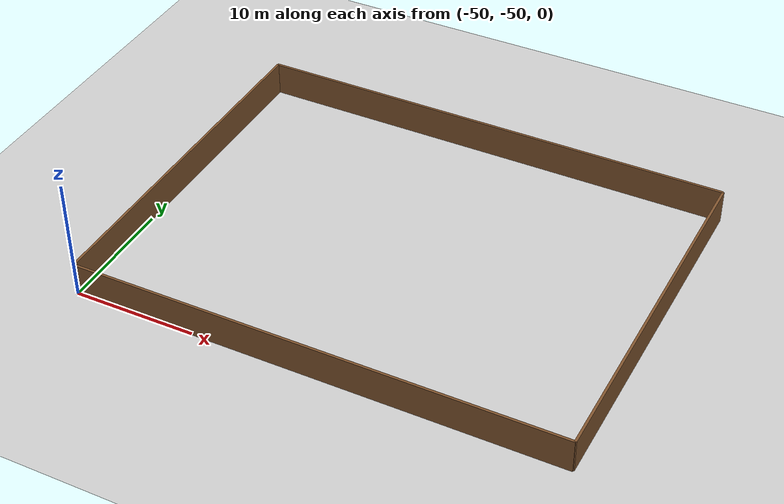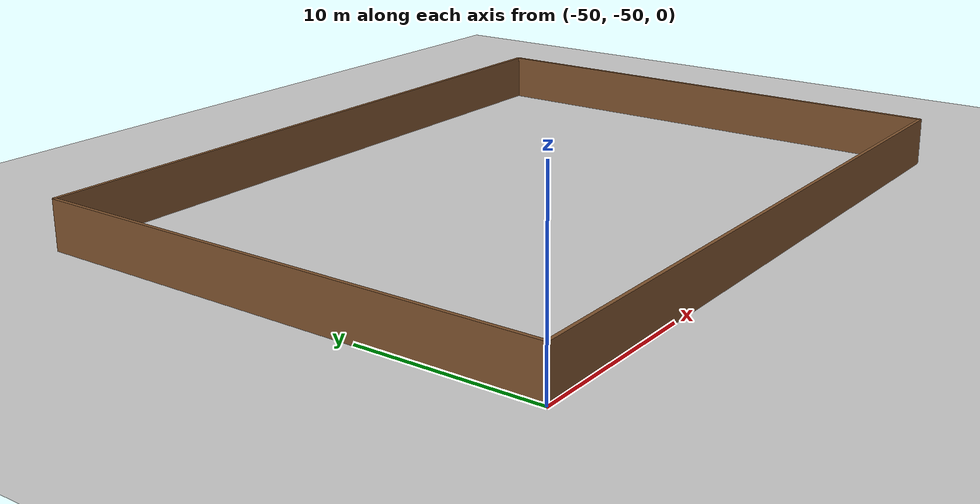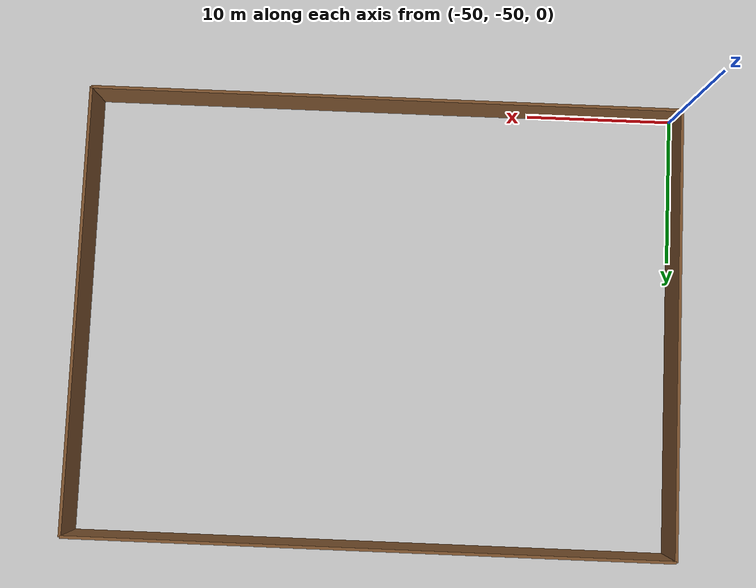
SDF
<sdf version="1.6">
 <world name="default">
  <model name="ground_plane">
   <static>1</static>
   <link name="link">
    <collision name="collision">
     <geometry><plane><normal>0 0 1</normal><size>100 100</size></plane></geometry>
     <surface>
      <contact><collide_bitmask>65535</collide_bitmask></contact>
      <friction><ode><mu>100</mu><mu2>50</mu2></ode></friction>
     </surface>
    </collision>
    <visual name="visual">
     <cast_shadows>0</cast_shadows>
     <geometry><plane><normal>0 0 1</normal><size>100 100</size></plane></geometry>
     <material>
      <script><uri>file://media/materials/scripts/gazebo.material</uri><name>Gazebo/Grey</name></script>
     </material>
    </visual>
   </link>
  </model>
  <model name="brownbrick_wall">
   <static>1</static>
   <link name="link_1">
    <pose>20 0 1.4 0 -0 0</pose>
    <inertial>
     <inertia><ixx>nan</ixx><ixy>0</ixy><ixz>0</ixz><iyy>nan</iyy><iyz>0</iyz><izz>nan</izz></inertia>
     <mass>0</mass>
    </inertial>
    <visual name="visual_1">
     <cast_shadows>0</cast_shadows>
     <geometry><box><size>40 0.2 2.8</size></box></geometry>
     <material>
      <script>
       <uri>model://env_wall/brownbrick_wall/materials/scripts</uri>
       <uri>model://env_wall/brownbrick_wall/materials/textures</uri>
       <name>vrc/brownbrick_wall</name>
      </script>
      <ambient>1 0.764706 0.305882 1</ambient>
      <shader type="pixel"/>
      <diffuse>0.7 0.7 0.7 1</diffuse>
      <specular>0.01 0.01 0.01 1</specular>
      <emissive>0 0 0 1</emissive>
     </material>
    </visual>
    <collision name="collision_1">
     <geometry><box><size>40 0.2 2.8</size></box></geometry>
     <surface>
      <friction>
       <ode><mu>1</mu><mu2>1</mu2><fdir1>0 0 0</fdir1><slip1>0</slip1><slip2>0</slip2></ode>
       <torsional>
        <coefficient>1</coefficient>
        <patch_radius>0</patch_radius>
        <surface_radius>0</surface_radius>
        <use_patch_radius>1</use_patch_radius>
        <ode><slip>0</slip></ode>
       </torsional>
      </friction>
      <bounce><restitution_coefficient>0</restitution_coefficient><threshold>1e+06</threshold></bounce>
      <contact>
       <collide_without_contact>0</collide_without_contact>
       <collide_without_contact_bitmask>1</collide_without_contact_bitmask>
       <collide_bitmask>1</collide_bitmask>
       <ode>
        <soft_cfm>0</soft_cfm>
        <soft_erp>0.2</soft_erp>
        <kp>1e+13</kp>
        <kd>1</kd>
        <max_vel>0.01</max_vel>
        <min_depth>0</min_depth>
       </ode>
       <bullet>
        <split_impulse>1</split_impulse>
        <split_impulse_penetration_threshold>-0.01</split_impulse_penetration_threshold>
        <soft_cfm>0</soft_cfm>
        <soft_erp>0.2</soft_erp>
        <kp>1e+13</kp>
        <kd>1</kd>
       </bullet>
      </contact>
     </surface>
    </collision>
   </link>
   <link name="link_2">
    <pose>20 30 1.4 0 -0 0</pose>
    <inertial>
     <inertia><ixx>nan</ixx><ixy>0</ixy><ixz>0</ixz><iyy>nan</iyy><iyz>0</iyz><izz>nan</izz></inertia>
     <mass>0</mass>
    </inertial>
    <visual name="visual_2">
     <cast_shadows>0</cast_shadows>
     <geometry><box><size>40 0.2 2.8</size></box></geometry>
     <material>
      <script>
       <uri>model://env_wall/brownbrick_wall/materials/scripts</uri>
       <uri>model://env_wall/brownbrick_wall/materials/textures</uri>
       <name>vrc/brownbrick_wall</name>
      </script>
      <ambient>1 0.764706 0.305882 1</ambient>
      <shader type="pixel"/>
      <diffuse>0.7 0.7 0.7 1</diffuse>
      <specular>0.01 0.01 0.01 1</specular>
      <emissive>0 0 0 1</emissive>
     </material>
    </visual>
    <collision name="collision_2">
     <geometry><box><size>40 0.2 2.8</size></box></geometry>
     <surface>
      <friction>
       <ode><mu>1</mu><mu2>1</mu2><fdir1>0 0 0</fdir1><slip1>0</slip1><slip2>0</slip2></ode>
       <torsional>
        <coefficient>1</coefficient>
        <patch_radius>0</patch_radius>
        <surface_radius>0</surface_radius>
        <use_patch_radius>1</use_patch_radius>
        <ode><slip>0</slip></ode>
       </torsional>
      </friction>
      <bounce><restitution_coefficient>0</restitution_coefficient><threshold>1e+06</threshold></bounce>
      <contact>
       <collide_without_contact>0</collide_without_contact>
       <collide_without_contact_bitmask>1</collide_without_contact_bitmask>
       <collide_bitmask>1</collide_bitmask>
       <ode>
        <soft_cfm>0</soft_cfm>
        <soft_erp>0.2</soft_erp>
        <kp>1e+13</kp>
        <kd>1</kd>
        <max_vel>0.01</max_vel>
        <min_depth>0</min_depth>
       </ode>
       <bullet>
        <split_impulse>1</split_impulse>
        <split_impulse_penetration_threshold>-0.01</split_impulse_penetration_threshold>
        <soft_cfm>0</soft_cfm>
        <soft_erp>0.2</soft_erp>
        <kp>1e+13</kp>
        <kd>1</kd>
       </bullet>
      </contact>
     </surface>
    </collision>
   </link>
   <link name="link_3">
    <pose>0 15 1.4 0 -0 1.57</pose>
    <inertial>
     <inertia><ixx>nan</ixx><ixy>0</ixy><ixz>0</ixz><iyy>nan</iyy><iyz>0</iyz><izz>nan</izz></inertia>
     <mass>0</mass>
    </inertial>
    <visual name="visual_3">
     <cast_shadows>0</cast_shadows>
     <geometry><box><size>30 0.2 2.8</size></box></geometry>
     <material>
      <script>
       <uri>model://env_wall/brownbrick_wall/materials/scripts</uri>
       <uri>model://env_wall/brownbrick_wall/materials/textures</uri>
       <name>vrc/brownbrick_wall</name>
      </script>
      <ambient>1 0.764706 0.305882 1</ambient>
      <shader type="pixel"/>
      <diffuse>0.7 0.7 0.7 1</diffuse>
      <specular>0.01 0.01 0.01 1</specular>
      <emissive>0 0 0 1</emissive>
     </material>
    </visual>
    <collision name="collision_3">
     <geometry><box><size>30 0.2 2.8</size></box></geometry>
     <surface>
      <friction>
       <ode><mu>1</mu><mu2>1</mu2><fdir1>0 0 0</fdir1><slip1>0</slip1><slip2>0</slip2></ode>
       <torsional>
        <coefficient>1</coefficient>
        <patch_radius>0</patch_radius>
        <surface_radius>0</surface_radius>
        <use_patch_radius>1</use_patch_radius>
        <ode><slip>0</slip></ode>
       </torsional>
      </friction>
      <bounce><restitution_coefficient>0</restitution_coefficient><threshold>1e+06</threshold></bounce>
      <contact>
       <collide_without_contact>0</collide_without_contact>
       <collide_without_contact_bitmask>1</collide_without_contact_bitmask>
       <collide_bitmask>1</collide_bitmask>
       <ode>
        <soft_cfm>0</soft_cfm>
        <soft_erp>0.2</soft_erp>
        <kp>1e+13</kp>
        <kd>1</kd>
        <max_vel>0.01</max_vel>
        <min_depth>0</min_depth>
       </ode>
       <bullet>
        <split_impulse>1</split_impulse>
        <split_impulse_penetration_threshold>-0.01</split_impulse_penetration_threshold>
        <soft_cfm>0</soft_cfm>
        <soft_erp>0.2</soft_erp>
        <kp>1e+13</kp>
        <kd>1</kd>
       </bullet>
      </contact>
     </surface>
    </collision>
   </link>
   <link name="link_4">
    <pose>40 15 1.4 0 -0 1.57</pose>
    <inertial>
     <inertia><ixx>nan</ixx><ixy>0</ixy><ixz>0</ixz><iyy>nan</iyy><iyz>0</iyz><izz>nan</izz></inertia>
     <mass>0</mass>
    </inertial>
    <visual name="visual_4">
     <cast_shadows>0</cast_shadows>
     <geometry><box><size>30 0.2 2.8</size></box></geometry>
     <material>
      <script>
       <uri>model://env_wall/brownbrick_wall/materials/scripts</uri>
       <uri>model://env_wall/brownbrick_wall/materials/textures</uri>
       <name>vrc/brownbrick_wall</name>
      </script>
      <ambient>1 0.764706 0.305882 1</ambient>
      <shader type="pixel"/>
      <diffuse>0.7 0.7 0.7 1</diffuse>
      <specular>0.01 0.01 0.01 1</specular>
      <emissive>0 0 0 1</emissive>
     </material>
    </visual>
    <collision name="collision_4">
     <geometry><box><size>30 0.2 2.8</size></box></geometry>
     <surface>
      <friction>
       <ode><mu>1</mu><mu2>1</mu2><fdir1>0 0 0</fdir1><slip1>0</slip1><slip2>0</slip2></ode>
       <torsional>
        <coefficient>1</coefficient>
        <patch_radius>0</patch_radius>
        <surface_radius>0</surface_radius>
        <use_patch_radius>1</use_patch_radius>
        <ode><slip>0</slip></ode>
       </torsional>
      </friction>
      <bounce><restitution_coefficient>0</restitution_coefficient><threshold>1e+06</threshold></bounce>
      <contact>
       <collide_without_contact>0</collide_without_contact>
       <collide_without_contact_bitmask>1</collide_without_contact_bitmask>
       <collide_bitmask>1</collide_bitmask>
       <ode>
        <soft_cfm>0</soft_cfm>
        <soft_erp>0.2</soft_erp>
        <kp>1e+13</kp>
        <kd>1</kd>
        <max_vel>0.01</max_vel>
        <min_depth>0</min_depth>
       </ode>
       <bullet>
        <split_impulse>1</split_impulse>
        <split_impulse_penetration_threshold>-0.01</split_impulse_penetration_threshold>
        <soft_cfm>0</soft_cfm>
        <soft_erp>0.2</soft_erp>
        <kp>1e+13</kp>
        <kd>1</kd>
       </bullet>
      </contact>
     </surface>
    </collision>
   </link>
   <pose>-50 -50 0 0 -0 0</pose>
  </model>
 </world>
</sdf>
